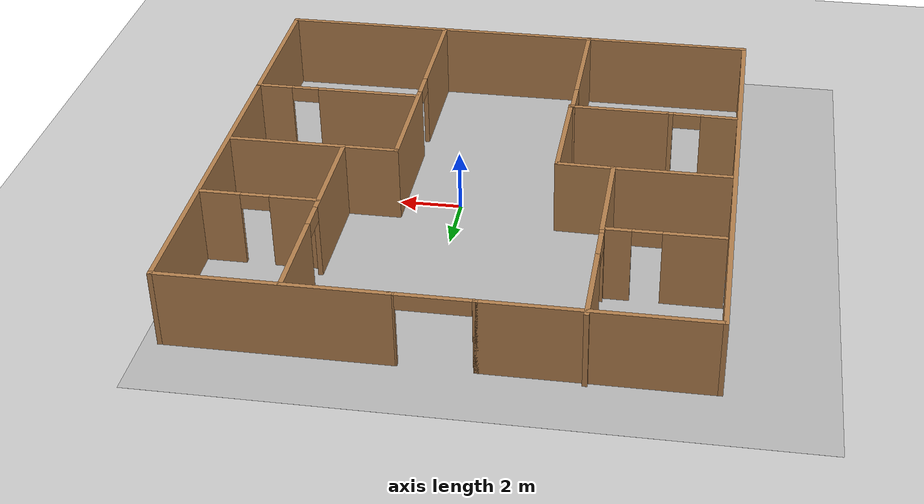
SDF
<sdf version="1.6">
 <plugin filename="libcollision_map_creator.so" name="collision_map_creator"/>
 <world name="default">
  <model name="ground_plane">
   <static>1</static>
   <link name="link">
    <collision name="collision">
     <geometry><plane><normal>0 0 1</normal><size>100 100</size></plane></geometry>
     <surface><friction><ode><mu>100</mu><mu2>50</mu2></ode></friction></surface>
    </collision>
    <visual name="visual">
     <cast_shadows>0</cast_shadows>
     <geometry><plane><normal>0 0 1</normal><size>100 100</size></plane></geometry>
     <material>
      <script><uri>file://media/materials/scripts/gazebo.material</uri><name>Gazebo/Grey</name></script>
     </material>
    </visual>
   </link>
  </model>
  <gravity>0 0 -9.8</gravity>
  <magnetic_field>6e-06 2.3e-05 -4.2e-05</magnetic_field>
  <atmosphere type="adiabatic"/>
  <physics name="default_physics" default="0" type="ode">
   <max_step_size>0.001</max_step_size>
   <real_time_factor>1</real_time_factor>
   <real_time_update_rate>1000</real_time_update_rate>
  </physics>
  <scene><ambient>0.4 0.4 0.4 1</ambient><background>0.7 0.7 0.7 1</background><shadows>1</shadows></scene>
  <spherical_coordinates>
   <surface_model>EARTH_WGS84</surface_model>
   <latitude_deg>0</latitude_deg>
   <longitude_deg>0</longitude_deg>
   <elevation>0</elevation>
   <heading_deg>0</heading_deg>
  </spherical_coordinates>
  <model name="course_world.world">
   <pose>-0.720424 0.399755 0 0 -0 0</pose>
   <link name="Wall_0">
    <collision name="Wall_0_Collision">
     <geometry><box><size>7 0.15 2.5</size></box></geometry>
     <pose>0 0 1.25 0 -0 0</pose>
    </collision>
    <visual name="Wall_0_Visual">
     <pose>0 0 1.25 0 -0 0</pose>
     <geometry><box><size>7 0.15 2.5</size></box></geometry>
     <material>
      <script><uri>file://media/materials/scripts/gazebo.material</uri><name>Gazebo/Wood</name></script>
      <ambient>1 1 1 1</ambient>
     </material>
    </visual>
    <pose>4.625 7.86114 0 0 -0 0</pose>
   </link>
   <link name="Wall_1">
    <collision name="Wall_1_Collision">
     <geometry><box><size>16 0.15 2.5</size></box></geometry>
     <pose>0 0 1.25 0 -0 0</pose>
    </collision>
    <visual name="Wall_1_Visual">
     <pose>0 0 1.25 0 -0 0</pose>
     <geometry><box><size>16 0.15 2.5</size></box></geometry>
     <material>
      <script><uri>file://media/materials/scripts/gazebo.material</uri><name>Gazebo/Wood</name></script>
      <ambient>1 1 1 1</ambient>
     </material>
    </visual>
    <pose>8.05 -0.063855 0 0 0 -1.5708</pose>
   </link>
   <link name="Wall_10">
    <collision name="Wall_10_Collision">
     <geometry><box><size>3.75 0.15 2.5</size></box></geometry>
     <pose>0 0 1.25 0 -0 0</pose>
    </collision>
    <visual name="Wall_10_Visual">
     <pose>0 0 1.25 0 -0 0</pose>
     <geometry><box><size>3.75 0.15 2.5</size></box></geometry>
     <material>
      <script><uri>file://media/materials/scripts/gazebo.material</uri><name>Gazebo/Wood</name></script>
      <ambient>1 1 1 1</ambient>
     </material>
    </visual>
    <pose>-2.5232 -1.3838 0 0 0 -1.5708</pose>
   </link>
   <link name="Wall_11">
    <collision name="Wall_11_Collision">
     <geometry><box><size>3.37149 0.15 2.5</size></box></geometry>
     <pose>0 0 1.25 0 -0 0</pose>
    </collision>
    <visual name="Wall_11_Visual">
     <pose>0 0 1.25 0 -0 0</pose>
     <geometry><box><size>3.37149 0.15 2.5</size></box></geometry>
     <material>
      <script><uri>file://media/materials/scripts/gazebo.material</uri><name>Gazebo/Wood</name></script>
      <ambient>1 1 1 1</ambient>
     </material>
    </visual>
    <pose>-4.13384 -3.1502 0 0 -0 3.13972</pose>
   </link>
   <link name="Wall_13">
    <pose>-2.58181 -5.56768 0 0 0 -1.5708</pose>
    <visual name="Wall_13_Visual_0">
     <pose>-2.41574 0 1.25 0 -0 0</pose>
     <geometry><box><size>0.16851 0.15 2.5</size></box></geometry>
     <material>
      <script><uri>file://media/materials/scripts/gazebo.material</uri><name>Gazebo/Wood</name></script>
      <ambient>1 1 1 1</ambient>
     </material>
    </visual>
    <collision name="Wall_13_Collision_0">
     <geometry><box><size>0.16851 0.15 2.5</size></box></geometry>
     <pose>-2.41574 0 1.25 0 -0 0</pose>
    </collision>
    <visual name="Wall_13_Visual_1">
     <pose>0.610267 0 1.25 0 -0 0</pose>
     <geometry><box><size>3.77947 0.15 2.5</size></box></geometry>
     <material>
      <script><uri>file://media/materials/scripts/gazebo.material</uri><name>Gazebo/Wood</name></script>
      <ambient>1 1 1 1</ambient>
     </material>
    </visual>
    <collision name="Wall_13_Collision_1">
     <geometry><box><size>3.77947 0.15 2.5</size></box></geometry>
     <pose>0.610267 0 1.25 0 -0 0</pose>
    </collision>
    <visual name="Wall_13_Visual_2">
     <pose>-1.80548 0 2.25 0 -0 0</pose>
     <geometry><box><size>1.05202 0.15 0.5</size></box></geometry>
     <material>
      <script><uri>file://media/materials/scripts/gazebo.material</uri><name>Gazebo/Wood</name></script>
      <ambient>1 1 1 1</ambient>
     </material>
    </visual>
    <collision name="Wall_13_Collision_2">
     <geometry><box><size>1.05202 0.15 0.5</size></box></geometry>
     <pose>-1.80548 0 2.25 0 -0 0</pose>
    </collision>
   </link>
   <link name="Wall_15">
    <pose>2.58794 -3.76615 0 0 -0 1.5708</pose>
    <visual name="Wall_15_Visual_0">
     <pose>-2.38795 0 1.25 0 -0 0</pose>
     <geometry><box><size>3.72409 0.15 2.5</size></box></geometry>
     <material>
      <script><uri>file://media/materials/scripts/gazebo.material</uri><name>Gazebo/Wood</name></script>
      <ambient>1 1 1 1</ambient>
     </material>
    </visual>
    <collision name="Wall_15_Collision_0">
     <geometry><box><size>3.72409 0.15 2.5</size></box></geometry>
     <pose>-2.38795 0 1.25 0 -0 0</pose>
    </collision>
    <visual name="Wall_15_Visual_1">
     <pose>2.31204 0 1.25 0 -0 0</pose>
     <geometry><box><size>3.87591 0.15 2.5</size></box></geometry>
     <material>
      <script><uri>file://media/materials/scripts/gazebo.material</uri><name>Gazebo/Wood</name></script>
      <ambient>1 1 1 1</ambient>
     </material>
    </visual>
    <collision name="Wall_15_Collision_1">
     <geometry><box><size>3.87591 0.15 2.5</size></box></geometry>
     <pose>2.31204 0 1.25 0 -0 0</pose>
    </collision>
    <visual name="Wall_15_Visual_2">
     <pose>-0.075909 0 2.25 0 -0 0</pose>
     <geometry><box><size>0.9 0.15 0.5</size></box></geometry>
     <material>
      <script><uri>file://media/materials/scripts/gazebo.material</uri><name>Gazebo/Wood</name></script>
      <ambient>1 1 1 1</ambient>
     </material>
    </visual>
    <collision name="Wall_15_Collision_2">
     <geometry><box><size>0.9 0.15 0.5</size></box></geometry>
     <pose>-0.075909 0 2.25 0 -0 0</pose>
    </collision>
   </link>
   <link name="Wall_17">
    <pose>-6.83979 -3.12754 0 0 0 -0.017938</pose>
    <visual name="Wall_17_Visual_0">
     <pose>-0.561398 0 1.25 0 -0 0</pose>
     <geometry><box><size>1.21818 0.15 2.5</size></box></geometry>
     <material>
      <script><uri>file://media/materials/scripts/gazebo.material</uri><name>Gazebo/Wood</name></script>
      <ambient>1 1 1 1</ambient>
     </material>
    </visual>
    <collision name="Wall_17_Collision_0">
     <geometry><box><size>1.21818 0.15 2.5</size></box></geometry>
     <pose>-0.561398 0 1.25 0 -0 0</pose>
    </collision>
    <visual name="Wall_17_Visual_1">
     <pose>1.05909 0 1.25 0 -0 0</pose>
     <geometry><box><size>0.222795 0.15 2.5</size></box></geometry>
     <material>
      <script><uri>file://media/materials/scripts/gazebo.material</uri><name>Gazebo/Wood</name></script>
      <ambient>1 1 1 1</ambient>
     </material>
    </visual>
    <collision name="Wall_17_Collision_1">
     <geometry><box><size>0.222795 0.15 2.5</size></box></geometry>
     <pose>1.05909 0 1.25 0 -0 0</pose>
    </collision>
    <visual name="Wall_17_Visual_2">
     <pose>0.497692 0 2.25 0 -0 0</pose>
     <geometry><box><size>0.9 0.15 0.5</size></box></geometry>
     <material>
      <script><uri>file://media/materials/scripts/gazebo.material</uri><name>Gazebo/Wood</name></script>
      <ambient>1 1 1 1</ambient>
     </material>
    </visual>
    <collision name="Wall_17_Collision_2">
     <geometry><box><size>0.9 0.15 0.5</size></box></geometry>
     <pose>0.497692 0 2.25 0 -0 0</pose>
    </collision>
   </link>
   <link name="Wall_19">
    <collision name="Wall_19_Collision">
     <geometry><box><size>3.83955 0.15 2.5</size></box></geometry>
     <pose>0 0 1.25 0 -0 0</pose>
    </collision>
    <visual name="Wall_19_Visual">
     <pose>0 0 1.25 0 -0 0</pose>
     <geometry><box><size>3.83955 0.15 2.5</size></box></geometry>
     <material>
      <script><uri>file://media/materials/scripts/gazebo.material</uri><name>Gazebo/Wood</name></script>
      <ambient>1 1 1 1</ambient>
     </material>
    </visual>
    <pose>-6.12092 0.474271 0 0 -0 0.001685</pose>
   </link>
   <link name="Wall_2">
    <collision name="Wall_2_Collision">
     <geometry><box><size>16.25 0.15 2.5</size></box></geometry>
     <pose>0 0 1.25 0 -0 0</pose>
    </collision>
    <visual name="Wall_2_Visual">
     <pose>0 0 1.25 0 -0 0</pose>
     <geometry><box><size>16.25 0.15 2.5</size></box></geometry>
     <material>
      <script><uri>file://media/materials/scripts/gazebo.material</uri><name>Gazebo/Wood</name></script>
      <ambient>1 1 1 1</ambient>
     </material>
    </visual>
    <pose>0 -7.98886 0 0 -0 3.14159</pose>
   </link>
   <link name="Wall_21">
    <pose>-6.07615 3.82738 0 0 -0 3.14159</pose>
    <visual name="Wall_21_Visual_0">
     <pose>-1.40117 0 1.25 0 -0 0</pose>
     <geometry><box><size>0.947663 0.15 2.5</size></box></geometry>
     <material>
      <script><uri>file://media/materials/scripts/gazebo.material</uri><name>Gazebo/Wood</name></script>
      <ambient>1 1 1 1</ambient>
     </material>
    </visual>
    <collision name="Wall_21_Collision_0">
     <geometry><box><size>0.947663 0.15 2.5</size></box></geometry>
     <pose>-1.40117 0 1.25 0 -0 0</pose>
    </collision>
    <visual name="Wall_21_Visual_1">
     <pose>0.923831 0 1.25 0 -0 0</pose>
     <geometry><box><size>1.90234 0.15 2.5</size></box></geometry>
     <material>
      <script><uri>file://media/materials/scripts/gazebo.material</uri><name>Gazebo/Wood</name></script>
      <ambient>1 1 1 1</ambient>
     </material>
    </visual>
    <collision name="Wall_21_Collision_1">
     <geometry><box><size>1.90234 0.15 2.5</size></box></geometry>
     <pose>0.923831 0 1.25 0 -0 0</pose>
    </collision>
    <visual name="Wall_21_Visual_2">
     <pose>-0.477337 0 2.25 0 -0 0</pose>
     <geometry><box><size>0.9 0.15 0.5</size></box></geometry>
     <material>
      <script><uri>file://media/materials/scripts/gazebo.material</uri><name>Gazebo/Wood</name></script>
      <ambient>1 1 1 1</ambient>
     </material>
    </visual>
    <collision name="Wall_21_Collision_2">
     <geometry><box><size>0.9 0.15 0.5</size></box></geometry>
     <pose>-0.477337 0 2.25 0 -0 0</pose>
    </collision>
   </link>
   <link name="Wall_23">
    <pose>0 7.86114 0 0 -0 0</pose>
    <visual name="Wall_23_Visual_0">
     <pose>-1.20175 0 1.25 0 -0 0</pose>
     <geometry><box><size>0.14651 0.15 2.5</size></box></geometry>
     <material>
      <script><uri>file://media/materials/scripts/gazebo.material</uri><name>Gazebo/Wood</name></script>
      <ambient>1 1 1 1</ambient>
     </material>
    </visual>
    <collision name="Wall_23_Collision_0">
     <geometry><box><size>0.14651 0.15 2.5</size></box></geometry>
     <pose>-1.20175 0 1.25 0 -0 0</pose>
    </collision>
    <visual name="Wall_23_Visual_1">
     <pose>1.17406 0 1.25 0 -0 0</pose>
     <geometry><box><size>0.201876 0.15 2.5</size></box></geometry>
     <material>
      <script><uri>file://media/materials/scripts/gazebo.material</uri><name>Gazebo/Wood</name></script>
      <ambient>1 1 1 1</ambient>
     </material>
    </visual>
    <collision name="Wall_23_Collision_1">
     <geometry><box><size>0.201876 0.15 2.5</size></box></geometry>
     <pose>1.17406 0 1.25 0 -0 0</pose>
    </collision>
    <visual name="Wall_23_Visual_2">
     <pose>-0.027683 0 2.25 0 -0 0</pose>
     <geometry><box><size>2.20161 0.15 0.5</size></box></geometry>
     <material>
      <script><uri>file://media/materials/scripts/gazebo.material</uri><name>Gazebo/Wood</name></script>
      <ambient>1 1 1 1</ambient>
     </material>
    </visual>
    <collision name="Wall_23_Collision_2">
     <geometry><box><size>2.20161 0.15 0.5</size></box></geometry>
     <pose>-0.027683 0 2.25 0 -0 0</pose>
    </collision>
   </link>
   <link name="Wall_25">
    <collision name="Wall_25_Collision">
     <geometry><box><size>5.5 0.15 2.5</size></box></geometry>
     <pose>0 0 1.25 0 -0 0</pose>
    </collision>
    <visual name="Wall_25_Visual">
     <pose>0 0 1.25 0 -0 0</pose>
     <geometry><box><size>5.5 0.15 2.5</size></box></geometry>
     <material>
      <script><uri>file://media/materials/scripts/gazebo.material</uri><name>Gazebo/Wood</name></script>
      <ambient>1 1 1 1</ambient>
     </material>
    </visual>
    <pose>5.26294 0.40885 0 0 -0 0</pose>
   </link>
   <link name="Wall_27">
    <pose>4.29931 4.16549 0 0 0 -1.5708</pose>
    <visual name="Wall_27_Visual_0">
     <pose>-2.21374 0 1.25 0 -0 0</pose>
     <geometry><box><size>3.07252 0.15 2.5</size></box></geometry>
     <material>
      <script><uri>file://media/materials/scripts/gazebo.material</uri><name>Gazebo/Wood</name></script>
      <ambient>1 1 1 1</ambient>
     </material>
    </visual>
    <collision name="Wall_27_Collision_0">
     <geometry><box><size>3.07252 0.15 2.5</size></box></geometry>
     <pose>-2.21374 0 1.25 0 -0 0</pose>
    </collision>
    <visual name="Wall_27_Visual_1">
     <pose>1.98626 0 1.25 0 -0 0</pose>
     <geometry><box><size>3.52748 0.15 2.5</size></box></geometry>
     <material>
      <script><uri>file://media/materials/scripts/gazebo.material</uri><name>Gazebo/Wood</name></script>
      <ambient>1 1 1 1</ambient>
     </material>
    </visual>
    <collision name="Wall_27_Collision_1">
     <geometry><box><size>3.52748 0.15 2.5</size></box></geometry>
     <pose>1.98626 0 1.25 0 -0 0</pose>
    </collision>
    <visual name="Wall_27_Visual_2">
     <pose>-0.227481 0 2.25 0 -0 0</pose>
     <geometry><box><size>0.9 0.15 0.5</size></box></geometry>
     <material>
      <script><uri>file://media/materials/scripts/gazebo.material</uri><name>Gazebo/Wood</name></script>
      <ambient>1 1 1 1</ambient>
     </material>
    </visual>
    <collision name="Wall_27_Collision_2">
     <geometry><box><size>0.9 0.15 0.5</size></box></geometry>
     <pose>-0.227481 0 2.25 0 -0 0</pose>
    </collision>
   </link>
   <link name="Wall_29">
    <pose>6.13448 3.54868 0 0 -0 0</pose>
    <visual name="Wall_29_Visual_0">
     <pose>-1.09508 0 1.25 0 -0 0</pose>
     <geometry><box><size>1.55983 0.15 2.5</size></box></geometry>
     <material>
      <script><uri>file://media/materials/scripts/gazebo.material</uri><name>Gazebo/Wood</name></script>
      <ambient>1 1 1 1</ambient>
     </material>
    </visual>
    <collision name="Wall_29_Collision_0">
     <geometry><box><size>1.55983 0.15 2.5</size></box></geometry>
     <pose>-1.09508 0 1.25 0 -0 0</pose>
    </collision>
    <visual name="Wall_29_Visual_1">
     <pose>1.22992 0 1.25 0 -0 0</pose>
     <geometry><box><size>1.29017 0.15 2.5</size></box></geometry>
     <material>
      <script><uri>file://media/materials/scripts/gazebo.material</uri><name>Gazebo/Wood</name></script>
      <ambient>1 1 1 1</ambient>
     </material>
    </visual>
    <collision name="Wall_29_Collision_1">
     <geometry><box><size>1.29017 0.15 2.5</size></box></geometry>
     <pose>1.22992 0 1.25 0 -0 0</pose>
    </collision>
    <visual name="Wall_29_Visual_2">
     <pose>0.134832 0 2.25 0 -0 0</pose>
     <geometry><box><size>0.9 0.15 0.5</size></box></geometry>
     <material>
      <script><uri>file://media/materials/scripts/gazebo.material</uri><name>Gazebo/Wood</name></script>
      <ambient>1 1 1 1</ambient>
     </material>
    </visual>
    <collision name="Wall_29_Collision_2">
     <geometry><box><size>0.9 0.15 0.5</size></box></geometry>
     <pose>0.134832 0 2.25 0 -0 0</pose>
    </collision>
   </link>
   <link name="Wall_3">
    <collision name="Wall_3_Collision">
     <geometry><box><size>16 0.15 2.5</size></box></geometry>
     <pose>0 0 1.25 0 -0 0</pose>
    </collision>
    <visual name="Wall_3_Visual">
     <pose>0 0 1.25 0 -0 0</pose>
     <geometry><box><size>16 0.15 2.5</size></box></geometry>
     <material>
      <script><uri>file://media/materials/scripts/gazebo.material</uri><name>Gazebo/Wood</name></script>
      <ambient>1 1 1 1</ambient>
     </material>
    </visual>
    <pose>-8.05 -0.063855 0 0 -0 1.5708</pose>
   </link>
   <link name="Wall_31">
    <pose>5.35608 -3.1001 0 0 -0 0</pose>
    <visual name="Wall_31_Visual_0">
     <pose>-1.05544 0 1.25 0 -0 0</pose>
     <geometry><box><size>3.38913 0.15 2.5</size></box></geometry>
     <material>
      <script><uri>file://media/materials/scripts/gazebo.material</uri><name>Gazebo/Wood</name></script>
      <ambient>1 1 1 1</ambient>
     </material>
    </visual>
    <collision name="Wall_31_Collision_0">
     <geometry><box><size>3.38913 0.15 2.5</size></box></geometry>
     <pose>-1.05544 0 1.25 0 -0 0</pose>
    </collision>
    <visual name="Wall_31_Visual_1">
     <pose>2.14456 0 1.25 0 -0 0</pose>
     <geometry><box><size>1.21087 0.15 2.5</size></box></geometry>
     <material>
      <script><uri>file://media/materials/scripts/gazebo.material</uri><name>Gazebo/Wood</name></script>
      <ambient>1 1 1 1</ambient>
     </material>
    </visual>
    <collision name="Wall_31_Collision_1">
     <geometry><box><size>1.21087 0.15 2.5</size></box></geometry>
     <pose>2.14456 0 1.25 0 -0 0</pose>
    </collision>
    <visual name="Wall_31_Visual_2">
     <pose>1.08913 0 2.25 0 -0 0</pose>
     <geometry><box><size>0.9 0.15 0.5</size></box></geometry>
     <material>
      <script><uri>file://media/materials/scripts/gazebo.material</uri><name>Gazebo/Wood</name></script>
      <ambient>1 1 1 1</ambient>
     </material>
    </visual>
    <collision name="Wall_31_Collision_2">
     <geometry><box><size>0.9 0.15 0.5</size></box></geometry>
     <pose>1.08913 0 2.25 0 -0 0</pose>
    </collision>
   </link>
   <link name="Wall_4">
    <collision name="Wall_4_Collision">
     <geometry><box><size>7 0.15 2.5</size></box></geometry>
     <pose>0 0 1.25 0 -0 0</pose>
    </collision>
    <visual name="Wall_4_Visual">
     <pose>0 0 1.25 0 -0 0</pose>
     <geometry><box><size>7 0.15 2.5</size></box></geometry>
     <material>
      <script><uri>file://media/materials/scripts/gazebo.material</uri><name>Gazebo/Wood</name></script>
      <ambient>1 1 1 1</ambient>
     </material>
    </visual>
    <pose>-4.625 7.86114 0 0 -0 0</pose>
   </link>
   <link name="Wall_6">
    <pose>-4.28789 5.94268 0 0 0 -1.5708</pose>
    <visual name="Wall_6_Visual_0">
     <pose>-0.664942 0 1.25 0 -0 0</pose>
     <geometry><box><size>2.92012 0.15 2.5</size></box></geometry>
     <material>
      <script><uri>file://media/materials/scripts/gazebo.material</uri><name>Gazebo/Wood</name></script>
      <ambient>1 1 1 1</ambient>
     </material>
    </visual>
    <collision name="Wall_6_Collision_0">
     <geometry><box><size>2.92012 0.15 2.5</size></box></geometry>
     <pose>-0.664942 0 1.25 0 -0 0</pose>
    </collision>
    <visual name="Wall_6_Visual_1">
     <pose>1.99362 0 1.25 0 -0 0</pose>
     <geometry><box><size>0.262759 0.15 2.5</size></box></geometry>
     <material>
      <script><uri>file://media/materials/scripts/gazebo.material</uri><name>Gazebo/Wood</name></script>
      <ambient>1 1 1 1</ambient>
     </material>
    </visual>
    <collision name="Wall_6_Collision_1">
     <geometry><box><size>0.262759 0.15 2.5</size></box></geometry>
     <pose>1.99362 0 1.25 0 -0 0</pose>
    </collision>
    <visual name="Wall_6_Visual_2">
     <pose>1.32868 0 2.25 0 -0 0</pose>
     <geometry><box><size>1.06713 0.15 0.5</size></box></geometry>
     <material>
      <script><uri>file://media/materials/scripts/gazebo.material</uri><name>Gazebo/Wood</name></script>
      <ambient>1 1 1 1</ambient>
     </material>
    </visual>
    <collision name="Wall_6_Collision_2">
     <geometry><box><size>1.06713 0.15 0.5</size></box></geometry>
     <pose>1.32868 0 2.25 0 -0 0</pose>
    </collision>
   </link>
   <link name="Wall_8">
    <collision name="Wall_8_Collision">
     <geometry><box><size>3.5 0.15 2.5</size></box></geometry>
     <pose>0 0 1.25 0 -0 0</pose>
    </collision>
    <visual name="Wall_8_Visual">
     <pose>0 0 1.25 0 -0 0</pose>
     <geometry><box><size>3.5 0.15 2.5</size></box></geometry>
     <material>
      <script><uri>file://media/materials/scripts/gazebo.material</uri><name>Gazebo/Wood</name></script>
      <ambient>1 1 1 1</ambient>
     </material>
    </visual>
    <pose>-4.27615 2.15238 0 0 0 -1.5708</pose>
   </link>
   <link name="Wall_9">
    <collision name="Wall_9_Collision">
     <geometry><box><size>1.90322 0.15 2.5</size></box></geometry>
     <pose>0 0 1.25 0 -0 0</pose>
    </collision>
    <visual name="Wall_9_Visual">
     <pose>0 0 1.25 0 -0 0</pose>
     <geometry><box><size>1.90322 0.15 2.5</size></box></geometry>
     <material>
      <script><uri>file://media/materials/scripts/gazebo.material</uri><name>Gazebo/Wood</name></script>
      <ambient>1 1 1 1</ambient>
     </material>
    </visual>
    <pose>-3.39967 0.462084 0 0 0 -0.017449</pose>
   </link>
   <static>1</static>
  </model>
  <audio><device>default</device></audio>
  <light name="user_point_light_0" type="point">
   <pose>-1.03 0.534466 1 0 -0 0</pose>
   <diffuse>0.5 0.5 0.5 1</diffuse>
   <specular>0.1 0.1 0.1 1</specular>
   <attenuation>
    <range>20</range>
    <constant>0.5</constant>
    <linear>0.01</linear>
    <quadratic>0.001</quadratic>
   </attenuation>
   <cast_shadows>0</cast_shadows>
   <direction>0 0 -1</direction>
  </light>
  <model name="Floor_room">
   <link name="main">
    <collision name="main_Collision"><geometry><box><size>20 20 1e-06</size></box></geometry></collision>
    <visual name="main_Visual">
     <geometry><box><size>20 20 0.001</size></box></geometry>
     <material>
      <script>
       <uri>model://Floor_room/materials/scripts</uri>
       <uri>model://Floor_room/materials/textures</uri>
       <name>floor_room</name>
      </script>
     </material>
    </visual>
   </link>
   <static>1</static>
   <pose>-2.11995 0.365053 0 0 -0 0</pose>
  </model>
  <model name="aws_robomaker_residential_Ball_01">
   <link name="link">
    <inertial>
     <mass>0.12</mass>
     <inertia>
      <ixx>0.030752</ixx>
      <ixy>0</ixy>
      <ixz>0</ixz>
      <iyy>0.030752</iyy>
      <iyz>0</iyz>
      <izz>0.030752</izz>
     </inertia>
    </inertial>
    <collision name="collision">
     <geometry><sphere><radius>0.31</radius></sphere></geometry>
     <surface>
      <friction><ode><mu>0.85</mu><mu2>0.85</mu2></ode></friction>
      <contact><ode><kd>8500</kd><max_vel>5.1</max_vel></ode></contact>
     </surface>
    </collision>
    <visual name="visual">
     <geometry><sphere><radius>0.31</radius></sphere></geometry>
     <material><diffuse>0.12 0.76 0.97 1</diffuse><ambient>0.03 0.21 0.27 1</ambient></material>
     <meta><layer>1</layer></meta>
    </visual>
   </link>
   <pose>-3.64866 -0.513129 0.31 0 -0 0</pose>
  </model>
 </world>
</sdf>
